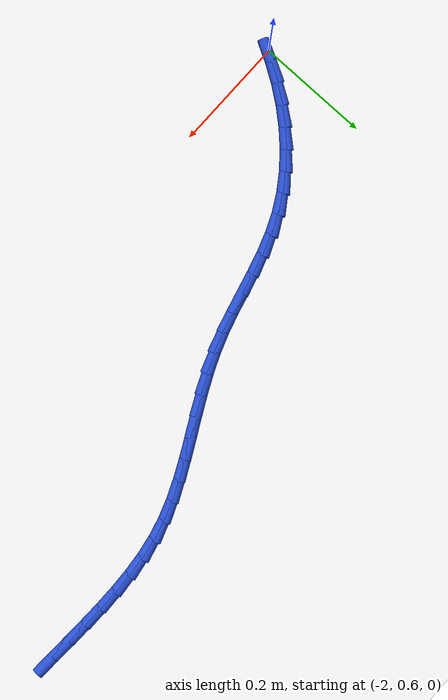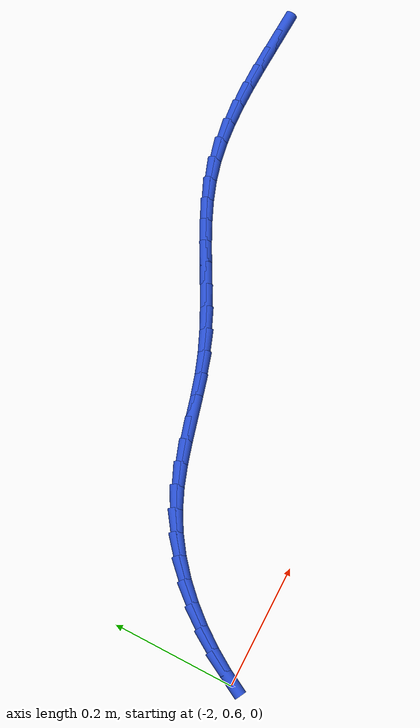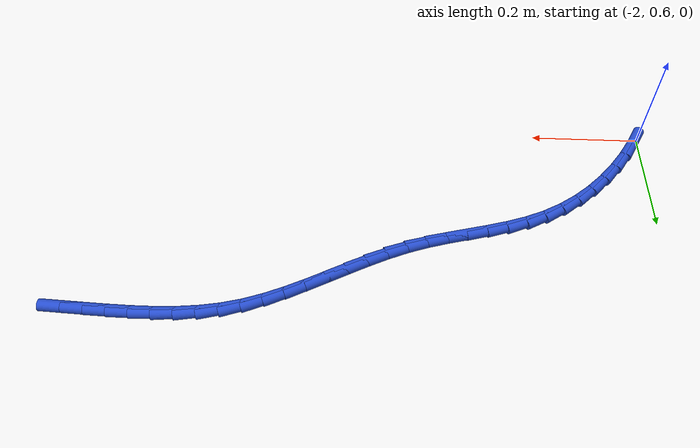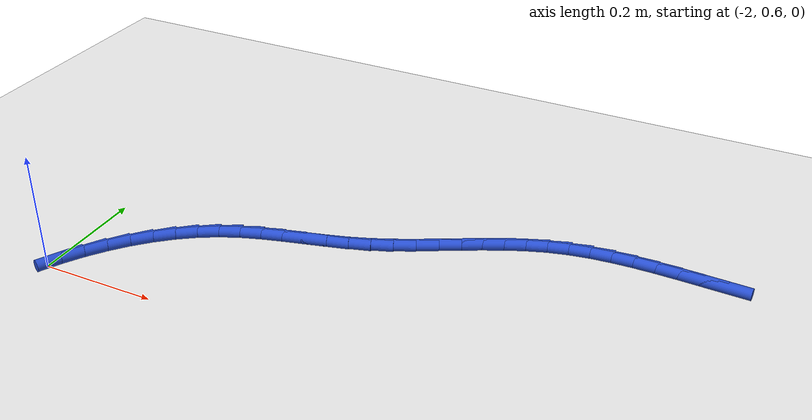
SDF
<sdf version="1.6">
 <world name="default">
  <model name="ground_plane">
   <static>1</static>
   <link name="link">
    <collision name="collision">
     <geometry><plane><normal>0 0 1</normal><size>100 100</size></plane></geometry>
     <surface><friction><ode><mu>100</mu><mu2>50</mu2></ode></friction></surface>
    </collision>
    <visual name="visual">
     <cast_shadows>0</cast_shadows>
     <geometry><plane><normal>0 0 1</normal><size>100 100</size></plane></geometry>
     <material>
      <script><uri>file://media/materials/scripts/gazebo.material</uri><name>Gazebo/WhiteGlow</name></script>
     </material>
    </visual>
   </link>
  </model>
  <model name="line">
   <link name="link_44">
    <pose>-1.0068625853137725 1.0167717112455263 0.01 0 1.57 -0.04262799267195059</pose>
    <collision name="collision">
     <geometry><cylinder><radius>0.01</radius><length>0.08</length></cylinder></geometry>
    </collision>
    <visual name="visual">
     <material>
      <script><name>Gazebo/Blue</name><uri>file://media/materials/scripts/gazebo.material</uri></script>
     </material>
     <geometry><cylinder><radius>0.01</radius><length>0.08</length></cylinder></geometry>
    </visual>
   </link>
   <link name="link_45">
    <pose>-1.0444020287336235 1.018372912353985 0.01 0 1.57 -0.039626745896558666</pose>
    <collision name="collision">
     <geometry><cylinder><radius>0.01</radius><length>0.08</length></cylinder></geometry>
    </collision>
    <visual name="visual">
     <material>
      <script><name>Gazebo/Blue</name><uri>file://media/materials/scripts/gazebo.material</uri></script>
     </material>
     <geometry><cylinder><radius>0.01</radius><length>0.08</length></cylinder></geometry>
    </visual>
   </link>
   <link name="link_46">
    <pose>-1.0815866583804206 1.0198471899807793 0.01 0 1.57 -0.02419784644239388</pose>
    <collision name="collision">
     <geometry><cylinder><radius>0.01</radius><length>0.08</length></cylinder></geometry>
    </collision>
    <visual name="visual">
     <material>
      <script><name>Gazebo/Blue</name><uri>file://media/materials/scripts/gazebo.material</uri></script>
     </material>
     <geometry><cylinder><radius>0.01</radius><length>0.08</length></cylinder></geometry>
    </visual>
   </link>
   <link name="link_47">
    <pose>-1.118367080831329 1.0207373707463427 0.01 0 1.57 0.0041591473298555216</pose>
    <collision name="collision">
     <geometry><cylinder><radius>0.01</radius><length>0.08</length></cylinder></geometry>
    </collision>
    <visual name="visual">
     <material>
      <script><name>Gazebo/Blue</name><uri>file://media/materials/scripts/gazebo.material</uri></script>
     </material>
     <geometry><cylinder><radius>0.01</radius><length>0.08</length></cylinder></geometry>
    </visual>
   </link>
   <link name="link_48">
    <pose>-1.1546939026635148 1.0205862812711088 0.01 0 1.57 0.04601319553581322</pose>
    <collision name="collision">
     <geometry><cylinder><radius>0.01</radius><length>0.08</length></cylinder></geometry>
    </collision>
    <visual name="visual">
     <material>
      <script><name>Gazebo/Blue</name><uri>file://media/materials/scripts/gazebo.material</uri></script>
     </material>
     <geometry><cylinder><radius>0.01</radius><length>0.08</length></cylinder></geometry>
    </visual>
   </link>
   <link name="link_49">
    <pose>-1.190517730454144 1.0189367481755112 0.01 0 1.57 0.10185786544762247</pose>
    <collision name="collision">
     <geometry><cylinder><radius>0.01</radius><length>0.08</length></cylinder></geometry>
    </collision>
    <visual name="visual">
     <material>
      <script><name>Gazebo/Blue</name><uri>file://media/materials/scripts/gazebo.material</uri></script>
     </material>
     <geometry><cylinder><radius>0.01</radius><length>0.08</length></cylinder></geometry>
    </visual>
   </link>
   <link name="link_50">
    <pose>-1.225789170780382 1.0153315980799835 0.01 0 1.57 0.17186699801237001</pose>
    <collision name="collision">
     <geometry><cylinder><radius>0.01</radius><length>0.08</length></cylinder></geometry>
    </collision>
    <visual name="visual">
     <material>
      <script><name>Gazebo/Blue</name><uri>file://media/materials/scripts/gazebo.material</uri></script>
     </material>
     <geometry><cylinder><radius>0.01</radius><length>0.08</length></cylinder></geometry>
    </visual>
   </link>
   <link name="link_51">
    <pose>-1.2604588302193949 1.00931365760496 0.01 0 1.57 0.2554726770095298</pose>
    <collision name="collision">
     <geometry><cylinder><radius>0.01</radius><length>0.08</length></cylinder></geometry>
    </collision>
    <visual name="visual">
     <material>
      <script><name>Gazebo/Blue</name><uri>file://media/materials/scripts/gazebo.material</uri></script>
     </material>
     <geometry><cylinder><radius>0.01</radius><length>0.08</length></cylinder></geometry>
    </visual>
   </link>
   <link name="link_52">
    <pose>-1.2944778818978988 1.0004285742768506 0.01 0 1.57 0.34116749140953334</pose>
    <collision name="collision">
     <geometry><cylinder><radius>0.01</radius><length>0.08</length></cylinder></geometry>
    </collision>
    <visual name="visual">
     <material>
      <script><name>Gazebo/Blue</name><uri>file://media/materials/scripts/gazebo.material</uri></script>
     </material>
     <geometry><cylinder><radius>0.01</radius><length>0.08</length></cylinder></geometry>
    </visual>
   </link>
   <link name="link_53">
    <pose>-1.3278680660095405 0.9885733559944454 0.01 0 1.57 0.408258919101463</pose>
    <collision name="collision">
     <geometry><cylinder><radius>0.01</radius><length>0.08</length></cylinder></geometry>
    </collision>
    <visual name="visual">
     <material>
      <script><name>Gazebo/Blue</name><uri>file://media/materials/scripts/gazebo.material</uri></script>
     </material>
     <geometry><cylinder><radius>0.01</radius><length>0.08</length></cylinder></geometry>
    </visual>
   </link>
   <link name="link_54">
    <pose>-1.3607892716168601 0.9743328674731561 0.01 0 1.57 0.45495571142469277</pose>
    <collision name="collision">
     <geometry><cylinder><radius>0.01</radius><length>0.08</length></cylinder></geometry>
    </collision>
    <visual name="visual">
     <material>
      <script><name>Gazebo/Blue</name><uri>file://media/materials/scripts/gazebo.material</uri></script>
     </material>
     <geometry><cylinder><radius>0.01</radius><length>0.08</length></cylinder></geometry>
    </visual>
   </link>
   <link name="link_55">
    <pose>-1.3934174144029776 0.958371771549813 0.01 0 1.57 0.4822108507076768</pose>
    <collision name="collision">
     <geometry><cylinder><radius>0.01</radius><length>0.08</length></cylinder></geometry>
    </collision>
    <visual name="visual">
     <material>
      <script><name>Gazebo/Blue</name><uri>file://media/materials/scripts/gazebo.material</uri></script>
     </material>
     <geometry><cylinder><radius>0.01</radius><length>0.08</length></cylinder></geometry>
    </visual>
   </link>
   <link name="link_56">
    <pose>-1.425928410051014 0.9413547310612476 0.01 0 1.57 0.4908600146643825</pose>
    <collision name="collision">
     <geometry><cylinder><radius>0.01</radius><length>0.08</length></cylinder></geometry>
    </collision>
    <visual name="visual">
     <material>
      <script><name>Gazebo/Blue</name><uri>file://media/materials/scripts/gazebo.material</uri></script>
     </material>
     <geometry><cylinder><radius>0.01</radius><length>0.08</length></cylinder></geometry>
    </visual>
   </link>
   <link name="link_57">
    <pose>-1.4584981742440886 0.92394640884429 0.01 0 1.57 0.48135624621469714</pose>
    <collision name="collision">
     <geometry><cylinder><radius>0.01</radius><length>0.08</length></cylinder></geometry>
    </collision>
    <visual name="visual">
     <material>
      <script><name>Gazebo/Blue</name><uri>file://media/materials/scripts/gazebo.material</uri></script>
     </material>
     <geometry><cylinder><radius>0.01</radius><length>0.08</length></cylinder></geometry>
    </visual>
   </link>
   <link name="link_58">
    <pose>-1.491302622665322 0.9068114677357707 0.01 0 1.57 0.45370864201447664</pose>
    <collision name="collision">
     <geometry><cylinder><radius>0.01</radius><length>0.08</length></cylinder></geometry>
    </collision>
    <visual name="visual">
     <material>
      <script><name>Gazebo/Blue</name><uri>file://media/materials/scripts/gazebo.material</uri></script>
     </material>
     <geometry><cylinder><radius>0.01</radius><length>0.08</length></cylinder></geometry>
    </visual>
   </link>
   <link name="link_59">
    <pose>-1.5245176709978348 0.8906145705725208 0.01 0 1.57 0.40758314330695194</pose>
    <collision name="collision">
     <geometry><cylinder><radius>0.01</radius><length>0.08</length></cylinder></geometry>
    </collision>
    <visual name="visual">
     <material>
      <script><name>Gazebo/Blue</name><uri>file://media/materials/scripts/gazebo.material</uri></script>
     </material>
     <geometry><cylinder><radius>0.01</radius><length>0.08</length></cylinder></geometry>
    </visual>
   </link>
   <link name="link_60">
    <pose>-1.5583192349247472 0.8760203801913707 0.01 0 1.57 0.3441309835503928</pose>
    <collision name="collision">
     <geometry><cylinder><radius>0.01</radius><length>0.08</length></cylinder></geometry>
    </collision>
    <visual name="visual">
     <material>
      <script><name>Gazebo/Blue</name><uri>file://media/materials/scripts/gazebo.material</uri></script>
     </material>
     <geometry><cylinder><radius>0.01</radius><length>0.08</length></cylinder></geometry>
    </visual>
   </link>
   <link name="link_61">
    <pose>-1.5928654960166062 0.8636392904398186 0.01 0 1.57 0.287715590323784</pose>
    <collision name="collision">
     <geometry><cylinder><radius>0.01</radius><length>0.08</length></cylinder></geometry>
    </collision>
    <visual name="visual">
     <material>
      <script><name>Gazebo/Blue</name><uri>file://media/materials/scripts/gazebo.material</uri></script>
     </material>
     <geometry><cylinder><radius>0.01</radius><length>0.08</length></cylinder></geometry>
    </visual>
   </link>
   <link name="link_62">
    <pose>-1.6280367070180273 0.8532311921346881 0.01 0 1.57 0.2578434012291095</pose>
    <collision name="collision">
     <geometry><cylinder><radius>0.01</radius><length>0.08</length></cylinder></geometry>
    </collision>
    <visual name="visual">
     <material>
      <script><name>Gazebo/Blue</name><uri>file://media/materials/scripts/gazebo.material</uri></script>
     </material>
     <geometry><cylinder><radius>0.01</radius><length>0.08</length></cylinder></geometry>
    </visual>
   </link>
   <link name="link_63">
    <pose>-1.6634925515230683 0.8438810020939913 0.01 0 1.57 0.25498921272309666</pose>
    <collision name="collision">
     <geometry><cylinder><radius>0.01</radius><length>0.08</length></cylinder></geometry>
    </collision>
    <visual name="visual">
     <material>
      <script><name>Gazebo/Blue</name><uri>file://media/materials/scripts/gazebo.material</uri></script>
     </material>
     <geometry><cylinder><radius>0.01</radius><length>0.08</length></cylinder></geometry>
    </visual>
   </link>
   <link name="link_64">
    <pose>-1.6988866434427554 0.8346550630141324 0.01 0 1.57 0.2793394329823381</pose>
    <collision name="collision">
     <geometry><cylinder><radius>0.01</radius><length>0.08</length></cylinder></geometry>
    </collision>
    <visual name="visual">
     <material>
      <script><name>Gazebo/Blue</name><uri>file://media/materials/scripts/gazebo.material</uri></script>
     </material>
     <geometry><cylinder><radius>0.01</radius><length>0.08</length></cylinder></geometry>
    </visual>
   </link>
   <link name="link_65">
    <pose>-1.7338725966881163 0.8246197175915143 0.01 0 1.57 0.33139271860102626</pose>
    <collision name="collision">
     <geometry><cylinder><radius>0.01</radius><length>0.08</length></cylinder></geometry>
    </collision>
    <visual name="visual">
     <material>
      <script><name>Gazebo/Blue</name><uri>file://media/materials/scripts/gazebo.material</uri></script>
     </material>
     <geometry><cylinder><radius>0.01</radius><length>0.08</length></cylinder></geometry>
    </visual>
   </link>
   <link name="link_66">
    <pose>-1.7681040251701794 0.8128413085225408 0.01 0 1.57 0.4114064668281981</pose>
    <collision name="collision">
     <geometry><cylinder><radius>0.01</radius><length>0.08</length></cylinder></geometry>
    </collision>
    <visual name="visual">
     <material>
      <script><name>Gazebo/Blue</name><uri>file://media/materials/scripts/gazebo.material</uri></script>
     </material>
     <geometry><cylinder><radius>0.01</radius><length>0.08</length></cylinder></geometry>
    </visual>
   </link>
   <link name="link_67">
    <pose>-1.8012345669605658 0.7983863079300518 0.01 0 1.57 0.5113048690324591</pose>
    <collision name="collision">
     <geometry><cylinder><radius>0.01</radius><length>0.08</length></cylinder></geometry>
    </collision>
    <visual name="visual">
     <material>
      <script><name>Gazebo/Blue</name><uri>file://media/materials/scripts/gazebo.material</uri></script>
     </material>
     <geometry><cylinder><radius>0.01</radius><length>0.08</length></cylinder></geometry>
    </visual>
   </link>
   <link name="link_68">
    <pose>-1.832966605729808 0.7805823143391925 0.01 0 1.57 0.608183223860943</pose>
    <collision name="collision">
     <geometry><cylinder><radius>0.01</radius><length>0.08</length></cylinder></geometry>
    </collision>
    <visual name="visual">
     <material>
      <script><name>Gazebo/Blue</name><uri>file://media/materials/scripts/gazebo.material</uri></script>
     </material>
     <geometry><cylinder><radius>0.01</radius><length>0.08</length></cylinder></geometry>
    </visual>
   </link>
   <link name="link_69">
    <pose>-1.8631534945648434 0.7595656577594956 0.01 0 1.57 0.6981775197486507</pose>
    <collision name="collision">
     <geometry><cylinder><radius>0.01</radius><length>0.08</length></cylinder></geometry>
    </collision>
    <visual name="visual">
     <material>
      <script><name>Gazebo/Blue</name><uri>file://media/materials/scripts/gazebo.material</uri></script>
     </material>
     <geometry><cylinder><radius>0.01</radius><length>0.08</length></cylinder></geometry>
    </visual>
   </link>
   <link name="link_70">
    <pose>-1.8916777247851146 0.7356287594578383 0.01 0 1.57 0.7820339242244991</pose>
    <collision name="collision">
     <geometry><cylinder><radius>0.01</radius><length>0.08</length></cylinder></geometry>
    </collision>
    <visual name="visual">
     <material>
      <script><name>Gazebo/Blue</name><uri>file://media/materials/scripts/gazebo.material</uri></script>
     </material>
     <geometry><cylinder><radius>0.01</radius><length>0.08</length></cylinder></geometry>
    </visual>
   </link>
   <link name="link_71">
    <pose>-1.9184217877100644 0.7090640407010969 0.01 0 1.57 0.8606787863623707</pose>
    <collision name="collision">
     <geometry><cylinder><radius>0.01</radius><length>0.08</length></cylinder></geometry>
    </collision>
    <visual name="visual">
     <material>
      <script><name>Gazebo/Blue</name><uri>file://media/materials/scripts/gazebo.material</uri></script>
     </material>
     <geometry><cylinder><radius>0.01</radius><length>0.08</length></cylinder></geometry>
    </visual>
   </link>
   <link name="link_72">
    <pose>-1.9432681746591358 0.6801639227561482 0.01 0 1.57 0.9351200429753009</pose>
    <collision name="collision">
     <geometry><cylinder><radius>0.01</radius><length>0.08</length></cylinder></geometry>
    </collision>
    <visual name="visual">
     <material>
      <script><name>Gazebo/Blue</name><uri>file://media/materials/scripts/gazebo.material</uri></script>
     </material>
     <geometry><cylinder><radius>0.01</radius><length>0.08</length></cylinder></geometry>
    </visual>
   </link>
   <link name="link_73">
    <pose>-1.9660993769517714 0.6492208268898685 0.01 0 1.57 1.0063900451868317</pose>
    <collision name="collision">
     <geometry><cylinder><radius>0.01</radius><length>0.08</length></cylinder></geometry>
    </collision>
    <visual name="visual">
     <material>
      <script><name>Gazebo/Blue</name><uri>file://media/materials/scripts/gazebo.material</uri></script>
     </material>
     <geometry><cylinder><radius>0.01</radius><length>0.08</length></cylinder></geometry>
    </visual>
   </link>
   <link name="link_74">
    <pose>-1.986797885907415 0.6165271743691344 0.01 0 1.57 1.0755193110999053</pose>
    <collision name="collision">
     <geometry><cylinder><radius>0.01</radius><length>0.08</length></cylinder></geometry>
    </collision>
    <visual name="visual">
     <material>
      <script><name>Gazebo/Blue</name><uri>file://media/materials/scripts/gazebo.material</uri></script>
     </material>
     <geometry><cylinder><radius>0.01</radius><length>0.08</length></cylinder></geometry>
    </visual>
   </link>
  </model>
 </world>
</sdf>
